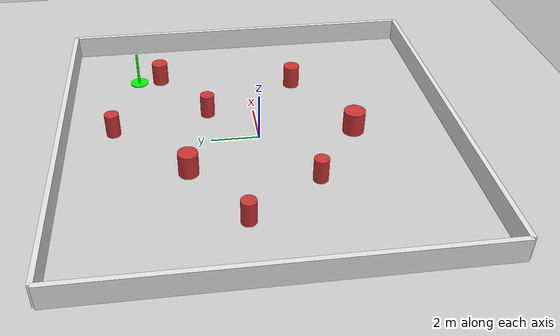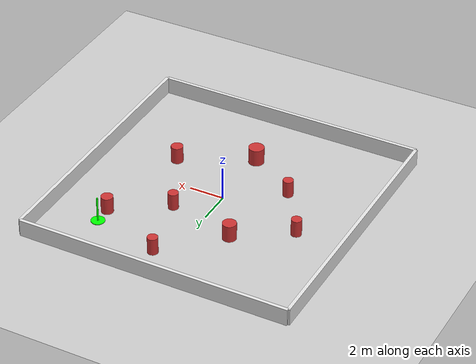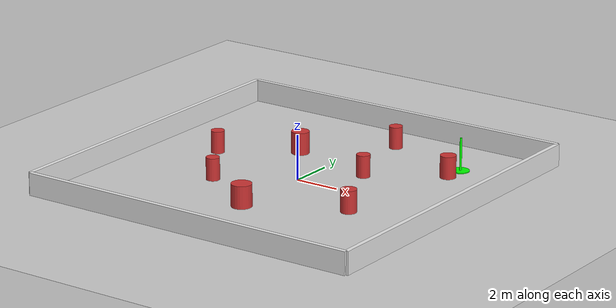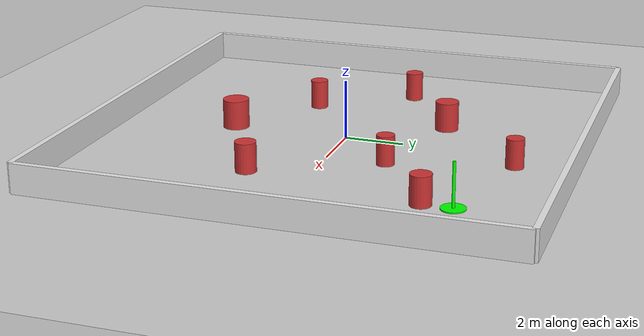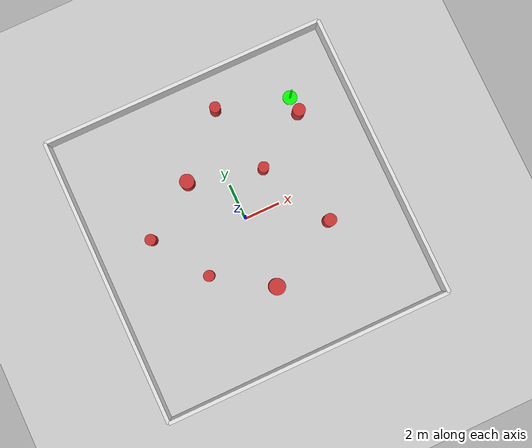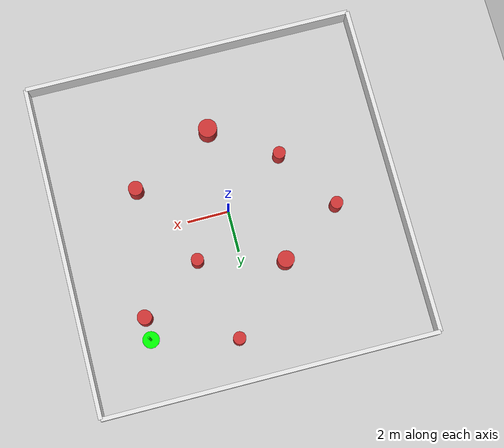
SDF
<?xml version="1.0"?>
<sdf version="1.6">
  <world name="cylinder_test">
    <include>
      <uri>model://sun</uri>
    </include>
    <include>
      <uri>model://ground_plane</uri>
    </include>
    <physics type="ode">
      <real_time_update_rate>1000</real_time_update_rate>
      <max_step_size>0.001</max_step_size>
      <real_time_factor>1</real_time_factor>
    </physics>
    <!-- ── Outer boundary (flat walls — same as training) ── -->
    <model name="wall_north">
      <static>true</static>
      <pose>0 8 0.5 0 0 0</pose>
      <link name="link">
        <collision name="col">
          <geometry>
            <box>
              <size>16 0.2 1</size>
            </box>
          </geometry>
        </collision>
        <visual name="vis">
          <geometry>
            <box>
              <size>16 0.2 1</size>
            </box>
          </geometry>
          <material>
            <ambient>0.9 0.9 0.9 1</ambient>
          </material>
        </visual>
      </link>
    </model>
    <model name="wall_south">
      <static>true</static>
      <pose>0 -8 0.5 0 0 0</pose>
      <link name="link">
        <collision name="col">
          <geometry>
            <box>
              <size>16 0.2 1</size>
            </box>
          </geometry>
        </collision>
        <visual name="vis">
          <geometry>
            <box>
              <size>16 0.2 1</size>
            </box>
          </geometry>
          <material>
            <ambient>0.9 0.9 0.9 1</ambient>
          </material>
        </visual>
      </link>
    </model>
    <model name="wall_east">
      <static>true</static>
      <pose>8 0 0.5 0 0 0</pose>
      <link name="link">
        <collision name="col">
          <geometry>
            <box>
              <size>0.2 16 1</size>
            </box>
          </geometry>
        </collision>
        <visual name="vis">
          <geometry>
            <box>
              <size>0.2 16 1</size>
            </box>
          </geometry>
          <material>
            <ambient>0.9 0.9 0.9 1</ambient>
          </material>
        </visual>
      </link>
    </model>
    <model name="wall_west">
      <static>true</static>
      <pose>-8 0 0.5 0 0 0</pose>
      <link name="link">
        <collision name="col">
          <geometry>
            <box>
              <size>0.2 16 1</size>
            </box>
          </geometry>
        </collision>
        <visual name="vis">
          <geometry>
            <box>
              <size>0.2 16 1</size>
            </box>
          </geometry>
          <material>
            <ambient>0.9 0.9 0.9 1</ambient>
          </material>
        </visual>
      </link>
    </model>
    <!-- ── Cylindrical obstacles (unseen during training) ── -->
    <model name="cyl_1">
      <static>true</static>
      <pose>2 2 0.5 0 0 0</pose>
      <link name="link">
        <collision name="col">
          <geometry>
            <cylinder>
              <radius>0.3</radius>
              <length>1.0</length>
            </cylinder>
          </geometry>
        </collision>
        <visual name="vis">
          <geometry>
            <cylinder>
              <radius>0.3</radius>
              <length>1.0</length>
            </cylinder>
          </geometry>
          <material>
            <ambient>0.8 0.2 0.2 1</ambient>
          </material>
        </visual>
      </link>
    </model>
    <model name="cyl_2">
      <static>true</static>
      <pose>-2 3 0.5 0 0 0</pose>
      <link name="link">
        <collision name="col">
          <geometry>
            <cylinder>
              <radius>0.4</radius>
              <length>1.0</length>
            </cylinder>
          </geometry>
        </collision>
        <visual name="vis">
          <geometry>
            <cylinder>
              <radius>0.4</radius>
              <length>1.0</length>
            </cylinder>
          </geometry>
          <material>
            <ambient>0.8 0.2 0.2 1</ambient>
          </material>
        </visual>
      </link>
    </model>
    <model name="cyl_3">
      <static>true</static>
      <pose>4 -2 0.5 0 0 0</pose>
      <link name="link">
        <collision name="col">
          <geometry>
            <cylinder>
              <radius>0.35</radius>
              <length>1.0</length>
            </cylinder>
          </geometry>
        </collision>
        <visual name="vis">
          <geometry>
            <cylinder>
              <radius>0.35</radius>
              <length>1.0</length>
            </cylinder>
          </geometry>
          <material>
            <ambient>0.8 0.2 0.2 1</ambient>
          </material>
        </visual>
      </link>
    </model>
    <model name="cyl_4">
      <static>true</static>
      <pose>-3 -2 0.5 0 0 0</pose>
      <link name="link">
        <collision name="col">
          <geometry>
            <cylinder>
              <radius>0.3</radius>
              <length>1.0</length>
            </cylinder>
          </geometry>
        </collision>
        <visual name="vis">
          <geometry>
            <cylinder>
              <radius>0.3</radius>
              <length>1.0</length>
            </cylinder>
          </geometry>
          <material>
            <ambient>0.8 0.2 0.2 1</ambient>
          </material>
        </visual>
      </link>
    </model>
    <model name="cyl_5">
      <static>true</static>
      <pose>0 -4 0.5 0 0 0</pose>
      <link name="link">
        <collision name="col">
          <geometry>
            <cylinder>
              <radius>0.45</radius>
              <length>1.0</length>
            </cylinder>
          </geometry>
        </collision>
        <visual name="vis">
          <geometry>
            <cylinder>
              <radius>0.45</radius>
              <length>1.0</length>
            </cylinder>
          </geometry>
          <material>
            <ambient>0.8 0.2 0.2 1</ambient>
          </material>
        </visual>
      </link>
    </model>
    <model name="cyl_6">
      <static>true</static>
      <pose>-5 1 0.5 0 0 0</pose>
      <link name="link">
        <collision name="col">
          <geometry>
            <cylinder>
              <radius>0.3</radius>
              <length>1.0</length>
            </cylinder>
          </geometry>
        </collision>
        <visual name="vis">
          <geometry>
            <cylinder>
              <radius>0.3</radius>
              <length>1.0</length>
            </cylinder>
          </geometry>
          <material>
            <ambient>0.8 0.2 0.2 1</ambient>
          </material>
        </visual>
      </link>
    </model>
    <model name="cyl_7">
      <static>true</static>
      <pose>5 4 0.5 0 0 0</pose>
      <link name="link">
        <collision name="col">
          <geometry>
            <cylinder>
              <radius>0.35</radius>
              <length>1.0</length>
            </cylinder>
          </geometry>
        </collision>
        <visual name="vis">
          <geometry>
            <cylinder>
              <radius>0.35</radius>
              <length>1.0</length>
            </cylinder>
          </geometry>
          <material>
            <ambient>0.8 0.2 0.2 1</ambient>
          </material>
        </visual>
      </link>
    </model>
    <model name="cyl_8">
      <static>true</static>
      <pose>1 6 0.5 0 0 0</pose>
      <link name="link">
        <collision name="col">
          <geometry>
            <cylinder>
              <radius>0.3</radius>
              <length>1.0</length>
            </cylinder>
          </geometry>
        </collision>
        <visual name="vis">
          <geometry>
            <cylinder>
              <radius>0.3</radius>
              <length>1.0</length>
            </cylinder>
          </geometry>
          <material>
            <ambient>0.8 0.2 0.2 1</ambient>
          </material>
        </visual>
      </link>
    </model>
    <!-- ── Goal marker at (5, 5) — visual only, no collision ── -->
    <!-- Green cylinder on ground marks the goal location -->
    <model name="goal_marker">
      <static>true</static>
      <pose>5 5 0.02 0 0 0</pose>
      <link name="link">
        <!-- No collision — robot can drive over it -->
        <visual name="vis">
          <geometry>
            <cylinder>
              <radius>0.4</radius>
              <length>0.04</length>
            </cylinder>
          </geometry>
          <material>
            <ambient>0.0 1.0 0.0 1</ambient>
            <diffuse>0.0 1.0 0.0 1</diffuse>
          </material>
        </visual>
      </link>
    </model>
    <!-- Goal pole — tall thin green pole so visible from far -->
    <model name="goal_pole">
      <static>true</static>
      <pose>5 5 0.75 0 0 0</pose>
      <link name="link">
        <visual name="vis">
          <geometry>
            <cylinder>
              <radius>0.05</radius>
              <length>1.5</length>
            </cylinder>
          </geometry>
          <material>
            <ambient>0.0 1.0 0.0 1</ambient>
            <diffuse>0.0 1.0 0.0 1</diffuse>
          </material>
        </visual>
      </link>
    </model>
  </world>
</sdf>
